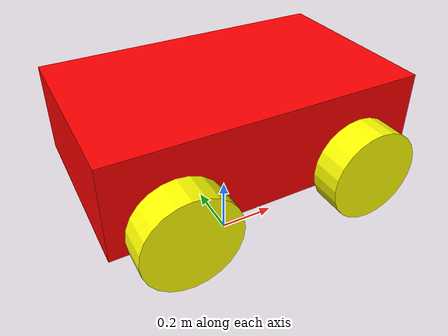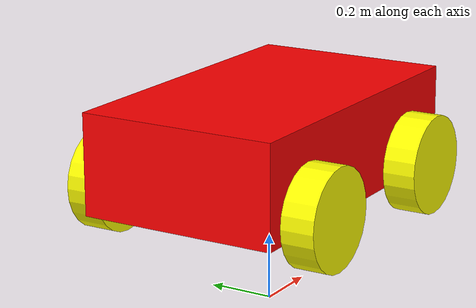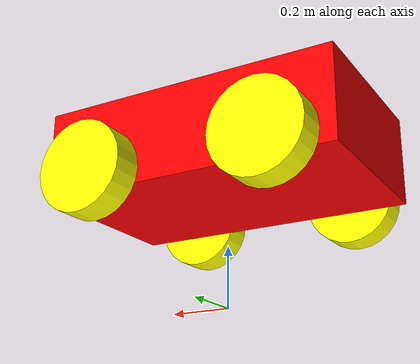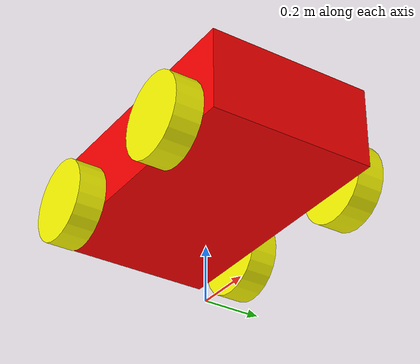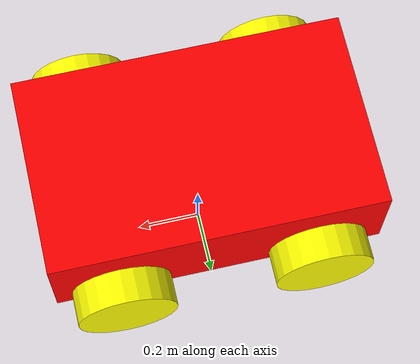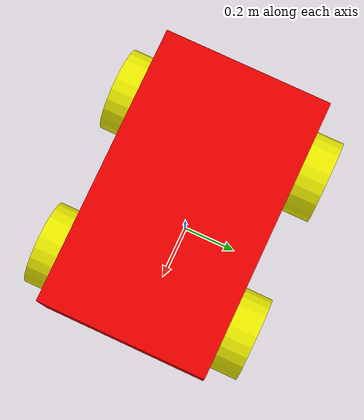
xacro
<?xml version="1.0"?>
<robot xmlns:xacro="http://www.ros.org/wiki/xacro"  name="robot">

    <xacro:include filename="robot_with_wheels.xacro" />

    <xacro:include filename="gazebo_control.xacro" />

</robot>

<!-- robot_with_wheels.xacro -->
<robot xmlns:xacro="http://www.ros.org/wiki/xacro">

    <link name="base_link"></link>

    <joint name="base_joint" type="fixed">
        <parent link="base_link"/>
        <child link="robot_body"/>
        <origin xyz="0 0 0.5" rpy="0 0 0"/>
    </joint>

    <link name="robot_body">
        <visual>
            <origin rpy="0 0 0" xyz="0 0 0" />
            <geometry>
                <box size="1 0.6 0.3" />
            </geometry>
            <material name="red">
                <color rgba="1 0 0 1" />
            </material>
        </visual>
        <collision>
            <origin rpy="0 0 0" xyz="0 0 0" />
            <geometry>
                <box size="1 0.6 0.3" />
            </geometry>
        </collision>
        <inertial>
            <mass value="1.0" />
            <inertia ixx="0.0375" iyy="0.113333333" izz="0.0908333333" ixy="0" ixz="0" iyz="0" />
        </inertial>
    </link>

    <xacro:macro name="wheels" params="prefix joint_x joint_y joint_z">
        <xacro:property name="length" value="0.1" />
        <xacro:property name="radius" value="0.15" />
        <xacro:property name="mass" value="0.1" />

        <link name="${prefix}_link">
            <visual>
                <origin rpy="1.570795 0 0" xyz="0 0 0" />
                <geometry>
                    <cylinder length="${length}" radius="${radius}" />
                </geometry>
                <material name="yellow">
                    <color rgba="1 1 0 1" />
                </material>
            </visual>
            <collision>
                <origin rpy="1.570795 0 0" xyz="0 0 0" />
                <geometry>
                    <cylinder length="${length}" radius="${radius}" />
                </geometry>
            </collision>
            <inertial>
                <mass value="${mass}" />
                <inertia ixx="${1/12*mass*(3*radius*radius + length*length)}"
                    iyy="${1/12*mass*(3*radius*radius + length*length)}"
                    izz="${1/2*mass*radius*radius}"
                    ixy="0" ixz="0" iyz="0" />
            </inertial>
        </link>

        <joint name="${prefix}_joint" type="continuous">
            <parent link="robot_body" />
            <child link="${prefix}_link" />
            <origin xyz="${joint_x} ${joint_y} ${joint_z}" rpy="0 0 0" />
            <axis xyz="0 1 0" />
        </joint>

    </xacro:macro>

    <!-- Instantiating wheels at specified locations -->
    <xacro:wheels prefix="left_wheel_front"  joint_x=" 0.3" joint_y=" 0.35" joint_z="-0.1" />
    <xacro:wheels prefix="right_wheel_front" joint_x=" 0.3" joint_y="-0.35" joint_z="-0.1" />
    <xacro:wheels prefix="left_wheel_lower"  joint_x="-0.3" joint_y=" 0.35" joint_z="-0.1" />
    <xacro:wheels prefix="right_wheel_lower" joint_x="-0.3" joint_y="-0.35" joint_z="-0.1" />

</robot>
